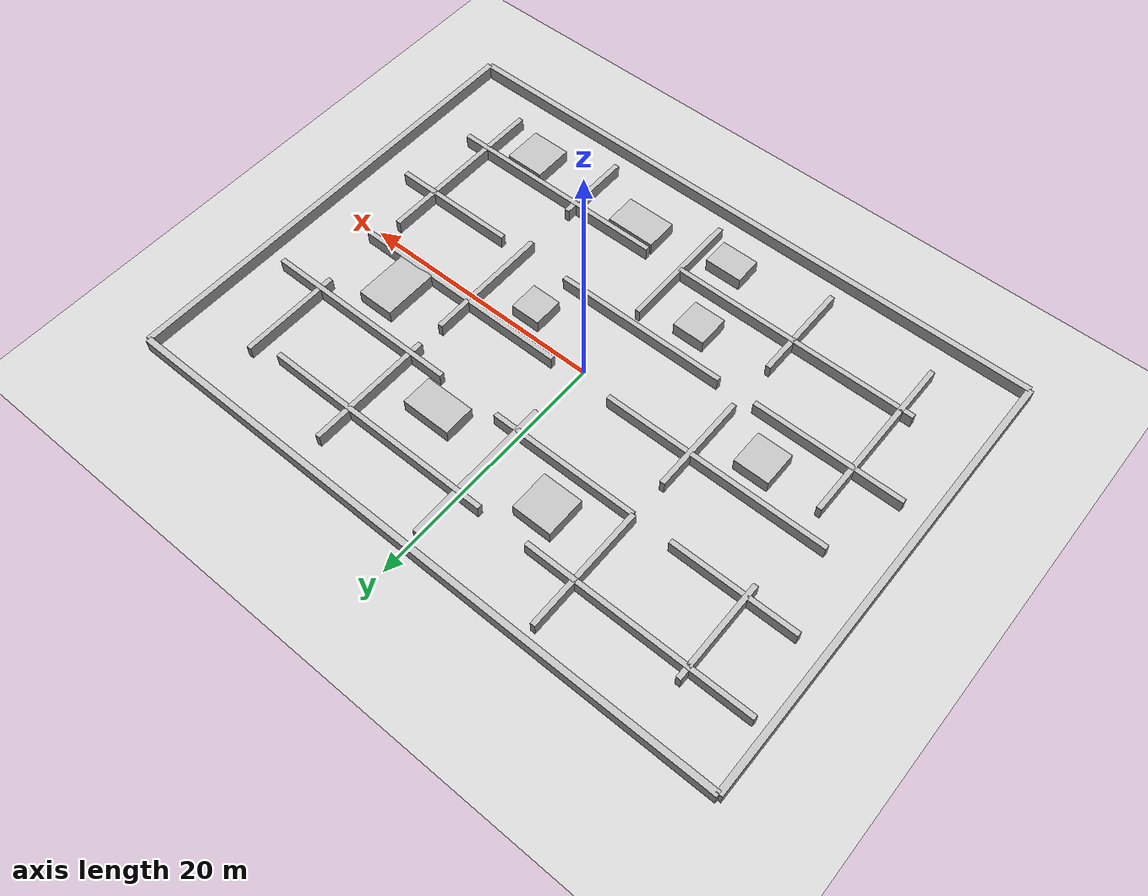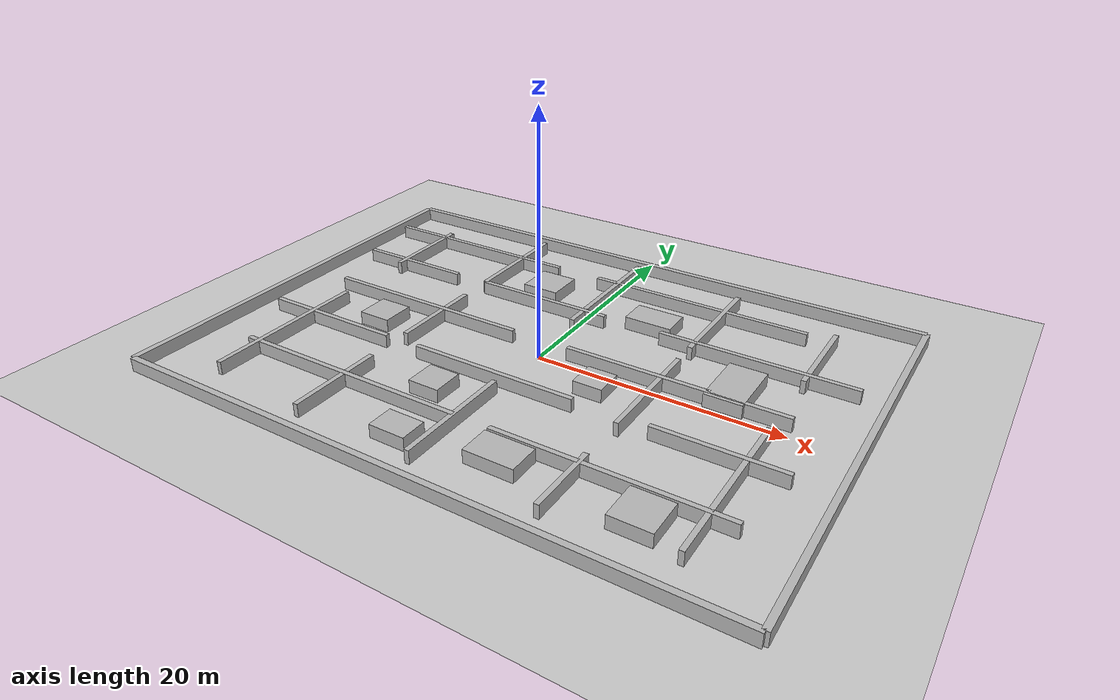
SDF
<?xml version="1.0" ?>
<sdf version="1.6">
  <world name="challenge_maze">
    <plugin name="gazebo_ros_state" filename="libgazebo_ros_state.so">
      <ros>
        <namespace>/gazebo</namespace>
      </ros>
      <update_rate>20.0</update_rate>
    </plugin>

    <include>
      <uri>model://sun</uri>
    </include>

    <include>
      <uri>model://ground_plane</uri>
    </include>

    <scene>
      <ambient>0.58 0.58 0.58 1</ambient>
      <background>0.86 0.90 0.96 1</background>
      <shadows>false</shadows>
    </scene>

    <physics type="ode">
      <max_step_size>0.001</max_step_size>
      <real_time_update_rate>1000</real_time_update_rate>
      <real_time_factor>1</real_time_factor>
    </physics>

    <model name="boundary_north">
      <static>true</static>
      <pose>0.000 18.000 0.550 0 0 0</pose>
      <link name="link">
        <collision name="collision">
          <geometry>
            <box><size>50.000 0.500 1.100</size></box>
          </geometry>
        </collision>
        <visual name="visual">
          <geometry>
            <box><size>50.000 0.500 1.100</size></box>
          </geometry>
          <material><ambient>0.72 0.72 0.72 1</ambient><diffuse>0.72 0.72 0.72 1</diffuse></material>
        </visual>
      </link>
    </model>
    <model name="boundary_south">
      <static>true</static>
      <pose>0.000 -18.000 0.550 0 0 0</pose>
      <link name="link">
        <collision name="collision">
          <geometry>
            <box><size>50.000 0.500 1.100</size></box>
          </geometry>
        </collision>
        <visual name="visual">
          <geometry>
            <box><size>50.000 0.500 1.100</size></box>
          </geometry>
          <material><ambient>0.72 0.72 0.72 1</ambient><diffuse>0.72 0.72 0.72 1</diffuse></material>
        </visual>
      </link>
    </model>
    <model name="boundary_west">
      <static>true</static>
      <pose>-25.000 0.000 0.550 0 0 0</pose>
      <link name="link">
        <collision name="collision">
          <geometry>
            <box><size>0.500 36.000 1.100</size></box>
          </geometry>
        </collision>
        <visual name="visual">
          <geometry>
            <box><size>0.500 36.000 1.100</size></box>
          </geometry>
          <material><ambient>0.72 0.72 0.72 1</ambient><diffuse>0.72 0.72 0.72 1</diffuse></material>
        </visual>
      </link>
    </model>
    <model name="boundary_east">
      <static>true</static>
      <pose>25.000 0.000 0.550 0 0 0</pose>
      <link name="link">
        <collision name="collision">
          <geometry>
            <box><size>0.500 36.000 1.100</size></box>
          </geometry>
        </collision>
        <visual name="visual">
          <geometry>
            <box><size>0.500 36.000 1.100</size></box>
          </geometry>
          <material><ambient>0.72 0.72 0.72 1</ambient><diffuse>0.72 0.72 0.72 1</diffuse></material>
        </visual>
      </link>
    </model>
    <model name="h_north_1">
      <static>true</static>
      <pose>-15.000 13.000 0.550 0 0 0</pose>
      <link name="link">
        <collision name="collision">
          <geometry>
            <box><size>18.000 0.400 1.100</size></box>
          </geometry>
        </collision>
        <visual name="visual">
          <geometry>
            <box><size>18.000 0.400 1.100</size></box>
          </geometry>
          <material><ambient>0.72 0.72 0.72 1</ambient><diffuse>0.72 0.72 0.72 1</diffuse></material>
        </visual>
      </link>
    </model>
    <model name="h_north_2">
      <static>true</static>
      <pose>7.500 13.000 0.550 0 0 0</pose>
      <link name="link">
        <collision name="collision">
          <geometry>
            <box><size>19.000 0.400 1.100</size></box>
          </geometry>
        </collision>
        <visual name="visual">
          <geometry>
            <box><size>19.000 0.400 1.100</size></box>
          </geometry>
          <material><ambient>0.72 0.72 0.72 1</ambient><diffuse>0.72 0.72 0.72 1</diffuse></material>
        </visual>
      </link>
    </model>
    <model name="h_mid_north_1">
      <static>true</static>
      <pose>-18.000 7.000 0.550 0 0 0</pose>
      <link name="link">
        <collision name="collision">
          <geometry>
            <box><size>10.000 0.400 1.100</size></box>
          </geometry>
        </collision>
        <visual name="visual">
          <geometry>
            <box><size>10.000 0.400 1.100</size></box>
          </geometry>
          <material><ambient>0.72 0.72 0.72 1</ambient><diffuse>0.72 0.72 0.72 1</diffuse></material>
        </visual>
      </link>
    </model>
    <model name="h_mid_north_2">
      <static>true</static>
      <pose>-4.000 7.000 0.550 0 0 0</pose>
      <link name="link">
        <collision name="collision">
          <geometry>
            <box><size>12.000 0.400 1.100</size></box>
          </geometry>
        </collision>
        <visual name="visual">
          <geometry>
            <box><size>12.000 0.400 1.100</size></box>
          </geometry>
          <material><ambient>0.72 0.72 0.72 1</ambient><diffuse>0.72 0.72 0.72 1</diffuse></material>
        </visual>
      </link>
    </model>
    <model name="h_mid_north_3">
      <static>true</static>
      <pose>15.000 7.000 0.550 0 0 0</pose>
      <link name="link">
        <collision name="collision">
          <geometry>
            <box><size>16.000 0.400 1.100</size></box>
          </geometry>
        </collision>
        <visual name="visual">
          <geometry>
            <box><size>16.000 0.400 1.100</size></box>
          </geometry>
          <material><ambient>0.72 0.72 0.72 1</ambient><diffuse>0.72 0.72 0.72 1</diffuse></material>
        </visual>
      </link>
    </model>
    <model name="h_center_1">
      <static>true</static>
      <pose>-12.000 1.000 0.550 0 0 0</pose>
      <link name="link">
        <collision name="collision">
          <geometry>
            <box><size>18.000 0.400 1.100</size></box>
          </geometry>
        </collision>
        <visual name="visual">
          <geometry>
            <box><size>18.000 0.400 1.100</size></box>
          </geometry>
          <material><ambient>0.72 0.72 0.72 1</ambient><diffuse>0.72 0.72 0.72 1</diffuse></material>
        </visual>
      </link>
    </model>
    <model name="h_center_2">
      <static>true</static>
      <pose>11.000 1.000 0.550 0 0 0</pose>
      <link name="link">
        <collision name="collision">
          <geometry>
            <box><size>18.000 0.400 1.100</size></box>
          </geometry>
        </collision>
        <visual name="visual">
          <geometry>
            <box><size>18.000 0.400 1.100</size></box>
          </geometry>
          <material><ambient>0.72 0.72 0.72 1</ambient><diffuse>0.72 0.72 0.72 1</diffuse></material>
        </visual>
      </link>
    </model>
    <model name="h_mid_south_1">
      <static>true</static>
      <pose>-17.000 -5.000 0.550 0 0 0</pose>
      <link name="link">
        <collision name="collision">
          <geometry>
            <box><size>12.000 0.400 1.100</size></box>
          </geometry>
        </collision>
        <visual name="visual">
          <geometry>
            <box><size>12.000 0.400 1.100</size></box>
          </geometry>
          <material><ambient>0.72 0.72 0.72 1</ambient><diffuse>0.72 0.72 0.72 1</diffuse></material>
        </visual>
      </link>
    </model>
    <model name="h_mid_south_2">
      <static>true</static>
      <pose>-1.000 -5.000 0.550 0 0 0</pose>
      <link name="link">
        <collision name="collision">
          <geometry>
            <box><size>14.000 0.400 1.100</size></box>
          </geometry>
        </collision>
        <visual name="visual">
          <geometry>
            <box><size>14.000 0.400 1.100</size></box>
          </geometry>
          <material><ambient>0.72 0.72 0.72 1</ambient><diffuse>0.72 0.72 0.72 1</diffuse></material>
        </visual>
      </link>
    </model>
    <model name="h_mid_south_3">
      <static>true</static>
      <pose>17.000 -5.000 0.550 0 0 0</pose>
      <link name="link">
        <collision name="collision">
          <geometry>
            <box><size>10.000 0.400 1.100</size></box>
          </geometry>
        </collision>
        <visual name="visual">
          <geometry>
            <box><size>10.000 0.400 1.100</size></box>
          </geometry>
          <material><ambient>0.72 0.72 0.72 1</ambient><diffuse>0.72 0.72 0.72 1</diffuse></material>
        </visual>
      </link>
    </model>
    <model name="h_south_1">
      <static>true</static>
      <pose>-10.000 -11.000 0.550 0 0 0</pose>
      <link name="link">
        <collision name="collision">
          <geometry>
            <box><size>20.000 0.400 1.100</size></box>
          </geometry>
        </collision>
        <visual name="visual">
          <geometry>
            <box><size>20.000 0.400 1.100</size></box>
          </geometry>
          <material><ambient>0.72 0.72 0.72 1</ambient><diffuse>0.72 0.72 0.72 1</diffuse></material>
        </visual>
      </link>
    </model>
    <model name="h_south_2">
      <static>true</static>
      <pose>12.000 -11.000 0.550 0 0 0</pose>
      <link name="link">
        <collision name="collision">
          <geometry>
            <box><size>18.000 0.400 1.100</size></box>
          </geometry>
        </collision>
        <visual name="visual">
          <geometry>
            <box><size>18.000 0.400 1.100</size></box>
          </geometry>
          <material><ambient>0.72 0.72 0.72 1</ambient><diffuse>0.72 0.72 0.72 1</diffuse></material>
        </visual>
      </link>
    </model>
    <model name="v_far_left_1">
      <static>true</static>
      <pose>-19.000 10.000 0.550 0 0 0</pose>
      <link name="link">
        <collision name="collision">
          <geometry>
            <box><size>0.400 8.000 1.100</size></box>
          </geometry>
        </collision>
        <visual name="visual">
          <geometry>
            <box><size>0.400 8.000 1.100</size></box>
          </geometry>
          <material><ambient>0.72 0.72 0.72 1</ambient><diffuse>0.72 0.72 0.72 1</diffuse></material>
        </visual>
      </link>
    </model>
    <model name="v_far_left_2">
      <static>true</static>
      <pose>-19.000 -8.000 0.550 0 0 0</pose>
      <link name="link">
        <collision name="collision">
          <geometry>
            <box><size>0.400 14.000 1.100</size></box>
          </geometry>
        </collision>
        <visual name="visual">
          <geometry>
            <box><size>0.400 14.000 1.100</size></box>
          </geometry>
          <material><ambient>0.72 0.72 0.72 1</ambient><diffuse>0.72 0.72 0.72 1</diffuse></material>
        </visual>
      </link>
    </model>
    <model name="v_left_1">
      <static>true</static>
      <pose>-10.000 12.000 0.550 0 0 0</pose>
      <link name="link">
        <collision name="collision">
          <geometry>
            <box><size>0.400 10.000 1.100</size></box>
          </geometry>
        </collision>
        <visual name="visual">
          <geometry>
            <box><size>0.400 10.000 1.100</size></box>
          </geometry>
          <material><ambient>0.72 0.72 0.72 1</ambient><diffuse>0.72 0.72 0.72 1</diffuse></material>
        </visual>
      </link>
    </model>
    <model name="v_left_2">
      <static>true</static>
      <pose>-10.000 0.000 0.550 0 0 0</pose>
      <link name="link">
        <collision name="collision">
          <geometry>
            <box><size>0.400 8.000 1.100</size></box>
          </geometry>
        </collision>
        <visual name="visual">
          <geometry>
            <box><size>0.400 8.000 1.100</size></box>
          </geometry>
          <material><ambient>0.72 0.72 0.72 1</ambient><diffuse>0.72 0.72 0.72 1</diffuse></material>
        </visual>
      </link>
    </model>
    <model name="v_left_3">
      <static>true</static>
      <pose>-10.000 -12.000 0.550 0 0 0</pose>
      <link name="link">
        <collision name="collision">
          <geometry>
            <box><size>0.400 8.000 1.100</size></box>
          </geometry>
        </collision>
        <visual name="visual">
          <geometry>
            <box><size>0.400 8.000 1.100</size></box>
          </geometry>
          <material><ambient>0.72 0.72 0.72 1</ambient><diffuse>0.72 0.72 0.72 1</diffuse></material>
        </visual>
      </link>
    </model>
    <model name="v_center_1">
      <static>true</static>
      <pose>0.000 11.000 0.550 0 0 0</pose>
      <link name="link">
        <collision name="collision">
          <geometry>
            <box><size>0.400 12.000 1.100</size></box>
          </geometry>
        </collision>
        <visual name="visual">
          <geometry>
            <box><size>0.400 12.000 1.100</size></box>
          </geometry>
          <material><ambient>0.72 0.72 0.72 1</ambient><diffuse>0.72 0.72 0.72 1</diffuse></material>
        </visual>
      </link>
    </model>
    <model name="v_center_2">
      <static>true</static>
      <pose>0.000 -11.000 0.550 0 0 0</pose>
      <link name="link">
        <collision name="collision">
          <geometry>
            <box><size>0.400 10.000 1.100</size></box>
          </geometry>
        </collision>
        <visual name="visual">
          <geometry>
            <box><size>0.400 10.000 1.100</size></box>
          </geometry>
          <material><ambient>0.72 0.72 0.72 1</ambient><diffuse>0.72 0.72 0.72 1</diffuse></material>
        </visual>
      </link>
    </model>
    <model name="v_right_1">
      <static>true</static>
      <pose>10.000 11.000 0.550 0 0 0</pose>
      <link name="link">
        <collision name="collision">
          <geometry>
            <box><size>0.400 10.000 1.100</size></box>
          </geometry>
        </collision>
        <visual name="visual">
          <geometry>
            <box><size>0.400 10.000 1.100</size></box>
          </geometry>
          <material><ambient>0.72 0.72 0.72 1</ambient><diffuse>0.72 0.72 0.72 1</diffuse></material>
        </visual>
      </link>
    </model>
    <model name="v_right_2">
      <static>true</static>
      <pose>10.000 -1.000 0.550 0 0 0</pose>
      <link name="link">
        <collision name="collision">
          <geometry>
            <box><size>0.400 10.000 1.100</size></box>
          </geometry>
        </collision>
        <visual name="visual">
          <geometry>
            <box><size>0.400 10.000 1.100</size></box>
          </geometry>
          <material><ambient>0.72 0.72 0.72 1</ambient><diffuse>0.72 0.72 0.72 1</diffuse></material>
        </visual>
      </link>
    </model>
    <model name="v_right_3">
      <static>true</static>
      <pose>10.000 -13.000 0.550 0 0 0</pose>
      <link name="link">
        <collision name="collision">
          <geometry>
            <box><size>0.400 6.000 1.100</size></box>
          </geometry>
        </collision>
        <visual name="visual">
          <geometry>
            <box><size>0.400 6.000 1.100</size></box>
          </geometry>
          <material><ambient>0.72 0.72 0.72 1</ambient><diffuse>0.72 0.72 0.72 1</diffuse></material>
        </visual>
      </link>
    </model>
    <model name="v_far_right_1">
      <static>true</static>
      <pose>19.000 10.000 0.550 0 0 0</pose>
      <link name="link">
        <collision name="collision">
          <geometry>
            <box><size>0.400 8.000 1.100</size></box>
          </geometry>
        </collision>
        <visual name="visual">
          <geometry>
            <box><size>0.400 8.000 1.100</size></box>
          </geometry>
          <material><ambient>0.72 0.72 0.72 1</ambient><diffuse>0.72 0.72 0.72 1</diffuse></material>
        </visual>
      </link>
    </model>
    <model name="v_far_right_2">
      <static>true</static>
      <pose>19.000 -8.000 0.550 0 0 0</pose>
      <link name="link">
        <collision name="collision">
          <geometry>
            <box><size>0.400 14.000 1.100</size></box>
          </geometry>
        </collision>
        <visual name="visual">
          <geometry>
            <box><size>0.400 14.000 1.100</size></box>
          </geometry>
          <material><ambient>0.72 0.72 0.72 1</ambient><diffuse>0.72 0.72 0.72 1</diffuse></material>
        </visual>
      </link>
    </model>
    <model name="block_a">
      <static>true</static>
      <pose>-14.000 -1.800 0.550 0 0 0</pose>
      <link name="link">
        <collision name="collision">
          <geometry>
            <box><size>2.800 2.800 1.100</size></box>
          </geometry>
        </collision>
        <visual name="visual">
          <geometry>
            <box><size>2.800 2.800 1.100</size></box>
          </geometry>
          <material><ambient>0.72 0.72 0.72 1</ambient><diffuse>0.72 0.72 0.72 1</diffuse></material>
        </visual>
      </link>
    </model>
    <model name="block_b">
      <static>true</static>
      <pose>-5.200 10.000 0.550 0 0 0</pose>
      <link name="link">
        <collision name="collision">
          <geometry>
            <box><size>3.200 3.200 1.100</size></box>
          </geometry>
        </collision>
        <visual name="visual">
          <geometry>
            <box><size>3.200 3.200 1.100</size></box>
          </geometry>
          <material><ambient>0.72 0.72 0.72 1</ambient><diffuse>0.72 0.72 0.72 1</diffuse></material>
        </visual>
      </link>
    </model>
    <model name="block_c">
      <static>true</static>
      <pose>5.500 9.000 0.550 0 0 0</pose>
      <link name="link">
        <collision name="collision">
          <geometry>
            <box><size>4.000 2.500 1.100</size></box>
          </geometry>
        </collision>
        <visual name="visual">
          <geometry>
            <box><size>4.000 2.500 1.100</size></box>
          </geometry>
          <material><ambient>0.72 0.72 0.72 1</ambient><diffuse>0.72 0.72 0.72 1</diffuse></material>
        </visual>
      </link>
    </model>
    <model name="block_d">
      <static>true</static>
      <pose>15.000 3.000 0.550 0 0 0</pose>
      <link name="link">
        <collision name="collision">
          <geometry>
            <box><size>3.000 5.000 1.100</size></box>
          </geometry>
        </collision>
        <visual name="visual">
          <geometry>
            <box><size>3.000 5.000 1.100</size></box>
          </geometry>
          <material><ambient>0.72 0.72 0.72 1</ambient><diffuse>0.72 0.72 0.72 1</diffuse></material>
        </visual>
      </link>
    </model>
    <model name="block_e">
      <static>true</static>
      <pose>5.000 -12.700 0.550 0 0 0</pose>
      <link name="link">
        <collision name="collision">
          <geometry>
            <box><size>4.000 2.600 1.100</size></box>
          </geometry>
        </collision>
        <visual name="visual">
          <geometry>
            <box><size>4.000 2.600 1.100</size></box>
          </geometry>
          <material><ambient>0.72 0.72 0.72 1</ambient><diffuse>0.72 0.72 0.72 1</diffuse></material>
        </visual>
      </link>
    </model>
    <model name="block_f">
      <static>true</static>
      <pose>15.500 -13.000 0.550 0 0 0</pose>
      <link name="link">
        <collision name="collision">
          <geometry>
            <box><size>3.200 3.200 1.100</size></box>
          </geometry>
        </collision>
        <visual name="visual">
          <geometry>
            <box><size>3.200 3.200 1.100</size></box>
          </geometry>
          <material><ambient>0.72 0.72 0.72 1</ambient><diffuse>0.72 0.72 0.72 1</diffuse></material>
        </visual>
      </link>
    </model>
    <model name="block_g">
      <static>true</static>
      <pose>-2.500 -14.000 0.550 0 0 0</pose>
      <link name="link">
        <collision name="collision">
          <geometry>
            <box><size>3.000 2.200 1.100</size></box>
          </geometry>
        </collision>
        <visual name="visual">
          <geometry>
            <box><size>3.000 2.200 1.100</size></box>
          </geometry>
          <material><ambient>0.72 0.72 0.72 1</ambient><diffuse>0.72 0.72 0.72 1</diffuse></material>
        </visual>
      </link>
    </model>
    <model name="block_h">
      <static>true</static>
      <pose>6.000 -1.800 0.550 0 0 0</pose>
      <link name="link">
        <collision name="collision">
          <geometry>
            <box><size>2.400 2.400 1.100</size></box>
          </geometry>
        </collision>
        <visual name="visual">
          <geometry>
            <box><size>2.400 2.400 1.100</size></box>
          </geometry>
          <material><ambient>0.72 0.72 0.72 1</ambient><diffuse>0.72 0.72 0.72 1</diffuse></material>
        </visual>
      </link>
    </model>
    <model name="block_i">
      <static>true</static>
      <pose>-4.000 -8.000 0.550 0 0 0</pose>
      <link name="link">
        <collision name="collision">
          <geometry>
            <box><size>2.600 2.600 1.100</size></box>
          </geometry>
        </collision>
        <visual name="visual">
          <geometry>
            <box><size>2.600 2.600 1.100</size></box>
          </geometry>
          <material><ambient>0.72 0.72 0.72 1</ambient><diffuse>0.72 0.72 0.72 1</diffuse></material>
        </visual>
      </link>
    </model>
  </world>
</sdf>
